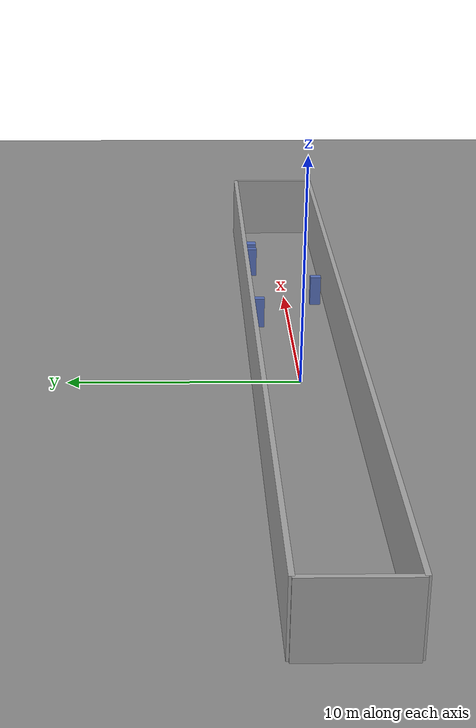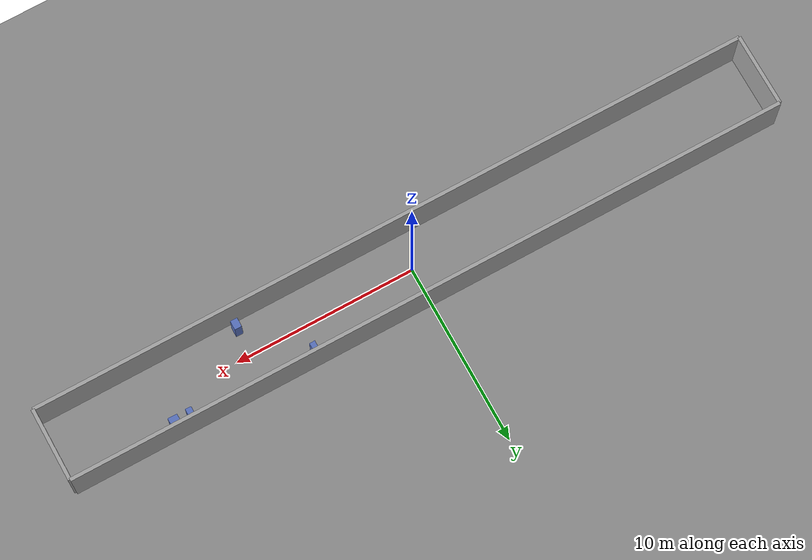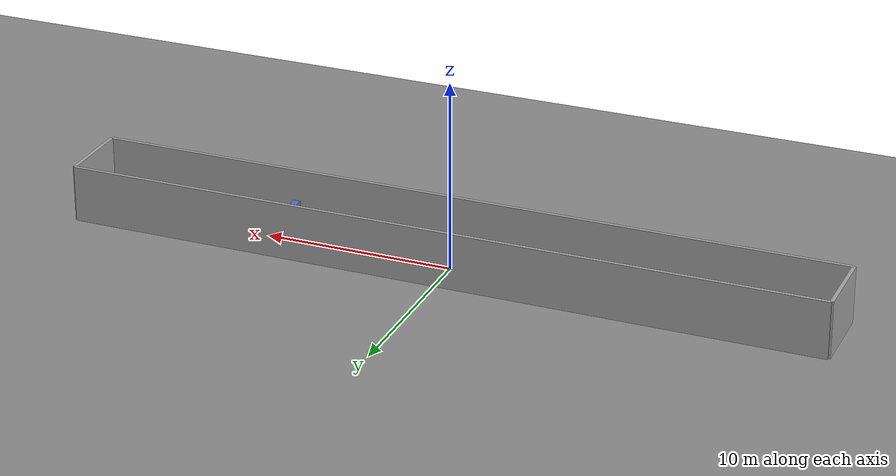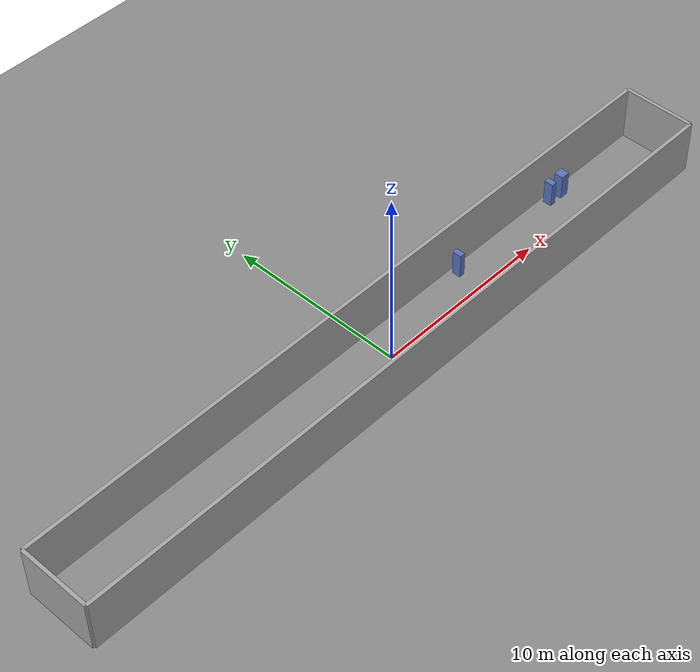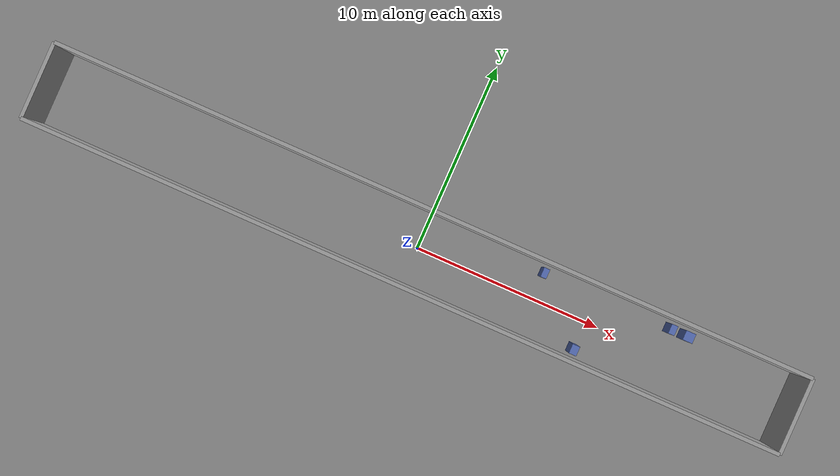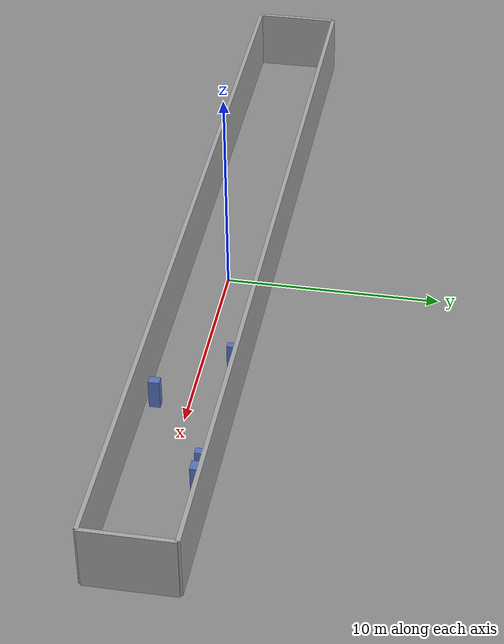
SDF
<?xml version="1.0"?>
<sdf version="1.6">
  <world name="corridor_normal_medium_1">
    <physics name="default_physics" type="ode">
      <real_time_update_rate>1000</real_time_update_rate>
      <max_step_size>0.001</max_step_size>
    </physics>
    <scene>
      <ambient>0.35750000000000004 0.35750000000000004 0.35750000000000004 1</ambient>
      <background>0.08 0.09 0.12 1</background>
      <shadows>true</shadows>
    </scene>
    <light name="sun" type="directional">
      <cast_shadows>true</cast_shadows>
      <pose>0 0 20 0 0 0</pose>
      <diffuse>0.65 0.65 0.65 1.0</diffuse>
      <specular>0.65 0.65 0.65 1.0</specular>
      <direction>-0.5 0.2 -1</direction>
    </light>
    <model name="ground_plane">
      <static>true</static>
      <link name="link">
        <collision name="collision"><geometry><plane><normal>0 0 1</normal><size>100 100</size></plane></geometry></collision>
        <visual name="visual">
          <geometry><plane><normal>0 0 1</normal><size>100 100</size></plane></geometry>
          <material><ambient>0.35 0.35 0.35 1</ambient><diffuse>0.55 0.55 0.55 1</diffuse></material>
        </visual>
      </link>
    </model>

    <model name="wall_left">
      <static>true</static>
      <pose>0.0000 2.0000 1.5000 0 0 0</pose>
      <link name="link">
        <collision name="collision"><geometry><box><size>40 0.2 3</size></box></geometry></collision>
        <visual name="visual">
          <geometry><box><size>40 0.2 3</size></box></geometry>
          <material><ambient>0.65 0.65 0.65 1</ambient><diffuse>0.65 0.65 0.65 1</diffuse></material>
        </visual>
      </link>
    </model>

    <model name="wall_right">
      <static>true</static>
      <pose>0.0000 -2.0000 1.5000 0 0 0</pose>
      <link name="link">
        <collision name="collision"><geometry><box><size>40 0.2 3</size></box></geometry></collision>
        <visual name="visual">
          <geometry><box><size>40 0.2 3</size></box></geometry>
          <material><ambient>0.65 0.65 0.65 1</ambient><diffuse>0.65 0.65 0.65 1</diffuse></material>
        </visual>
      </link>
    </model>

    <model name="wall_end">
      <static>true</static>
      <pose>20.0000 0.0000 1.5000 0 0 0</pose>
      <link name="link">
        <collision name="collision"><geometry><box><size>0.2 4 3</size></box></geometry></collision>
        <visual name="visual">
          <geometry><box><size>0.2 4 3</size></box></geometry>
          <material><ambient>0.65 0.65 0.65 1</ambient><diffuse>0.65 0.65 0.65 1</diffuse></material>
        </visual>
      </link>
    </model>

    <model name="wall_start">
      <static>true</static>
      <pose>-20.0000 0.0000 1.5000 0 0 0</pose>
      <link name="link">
        <collision name="collision"><geometry><box><size>0.2 4 3</size></box></geometry></collision>
        <visual name="visual">
          <geometry><box><size>0.2 4 3</size></box></geometry>
          <material><ambient>0.65 0.65 0.65 1</ambient><diffuse>0.65 0.65 0.65 1</diffuse></material>
        </visual>
      </link>
    </model>

    <model name="corridor_feature_0">
      <static>true</static>
      <pose>6.3205 1.4500 0.7000 0 0 0</pose>
      <link name="link">
        <collision name="collision"><geometry><box><size>0.30838183818532605 0.5 1.4</size></box></geometry></collision>
        <visual name="visual">
          <geometry><box><size>0.30838183818532605 0.5 1.4</size></box></geometry>
          <material><ambient>0.35 0.45 0.75 1</ambient><diffuse>0.35 0.45 0.75 1</diffuse></material>
        </visual>
      </link>
    </model>

    <model name="corridor_feature_1">
      <static>true</static>
      <pose>13.2619 1.4500 0.7000 0 0 0</pose>
      <link name="link">
        <collision name="collision"><geometry><box><size>0.328342477803293 0.5 1.4</size></box></geometry></collision>
        <visual name="visual">
          <geometry><box><size>0.328342477803293 0.5 1.4</size></box></geometry>
          <material><ambient>0.35 0.45 0.75 1</ambient><diffuse>0.35 0.45 0.75 1</diffuse></material>
        </visual>
      </link>
    </model>

    <model name="corridor_feature_2">
      <static>true</static>
      <pose>9.1898 -1.4500 0.7000 0 0 0</pose>
      <link name="link">
        <collision name="collision"><geometry><box><size>0.3938540056709754 0.5 1.4</size></box></geometry></collision>
        <visual name="visual">
          <geometry><box><size>0.3938540056709754 0.5 1.4</size></box></geometry>
          <material><ambient>0.35 0.45 0.75 1</ambient><diffuse>0.35 0.45 0.75 1</diffuse></material>
        </visual>
      </link>
    </model>

    <model name="corridor_feature_3">
      <static>true</static>
      <pose>14.1399 1.4500 0.7000 0 0 0</pose>
      <link name="link">
        <collision name="collision"><geometry><box><size>0.5183836380052886 0.5 1.4</size></box></geometry></collision>
        <visual name="visual">
          <geometry><box><size>0.5183836380052886 0.5 1.4</size></box></geometry>
          <material><ambient>0.35 0.45 0.75 1</ambient><diffuse>0.35 0.45 0.75 1</diffuse></material>
        </visual>
      </link>
    </model>
  </world>
</sdf>
